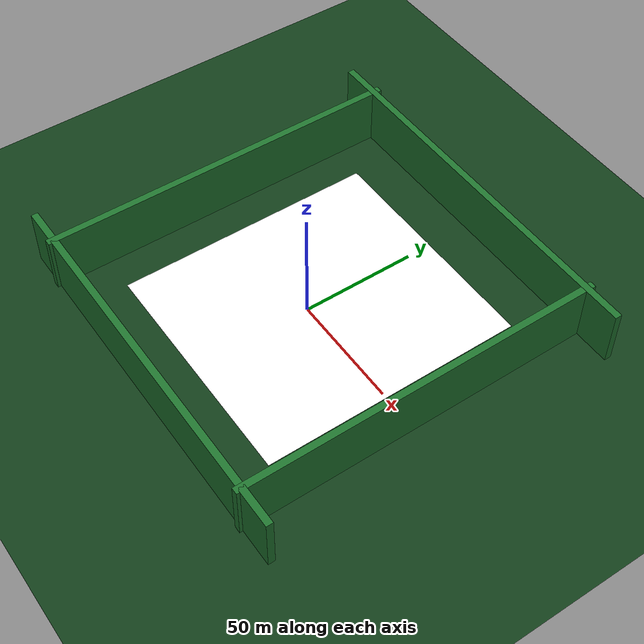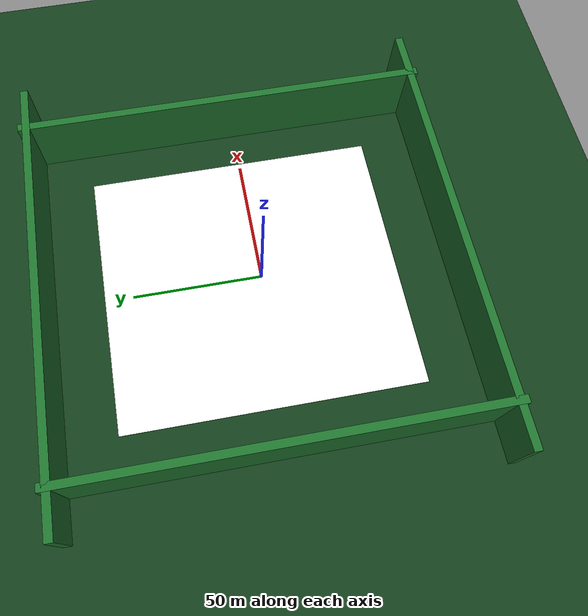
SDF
<?xml version="1.0" ?>
<sdf version="1.10">
  <world name="saha_dunyasi">
    <plugin name="gz::sim::systems::UserCommands" filename="gz-sim-user-commands-system"/>
    <plugin name="gz::sim::systems::Sensors" filename="gz-sim-sensors-system">
      <render_engine>ogre2</render_engine>
    </plugin>
    <plugin name="gz::sim::systems::Physics" filename="gz-sim-physics-system"/>
    <plugin name="gz::sim::systems::SceneBroadcaster" filename="gz-sim-scene-broadcaster-system"/>
    <plugin name="gz::sim::systems::Imu" filename="gz-sim-imu-system"/>
    <plugin name="gz::sim::systems::NavSat" filename="gz-sim-navsat-system"/>

    <!-- GPS datumu: benim_dunyam.sdf / launch DATUM_* / final_odom ile senkron -->
    <spherical_coordinates>
      <surface_model>EARTH_WGS84</surface_model>
      <world_frame_orientation>ENU</world_frame_orientation>
      <latitude_deg>40.7899</latitude_deg>
      <longitude_deg>29.5089</longitude_deg>
      <elevation>30.0</elevation>
      <heading_deg>0</heading_deg>
    </spherical_coordinates>

    <gravity>0 0 -9.8</gravity>
    <magnetic_field>5.5645e-06 2.28758e-05 -4.23884e-05</magnetic_field>
    <atmosphere type="adiabatic"/>
    <physics type="ode">
      <max_step_size>0.004</max_step_size>
      <real_time_factor>1</real_time_factor>
      <real_time_update_rate>250</real_time_update_rate>
    </physics>
    <scene>
      <ambient>0.4 0.4 0.4 1</ambient>
      <background>0.3 0.6 0.9 1</background>
      <shadows>false</shadows>
    </scene>

    <!-- Geniş yeşil taban (saha kutusunun dışı) -->
    <model name="zemin">
      <static>true</static>
      <link name="link">
        <collision name="collision">
          <geometry><plane><normal>0 0 1</normal><size>1000 1000</size></plane></geometry>
        </collision>
        <visual name="visual">
          <geometry><plane><normal>0 0 1</normal><size>1000 1000</size></plane></geometry>
          <material>
            <ambient>0.06 0.2 0.08 1</ambient>
            <diffuse>0.07 0.24 0.1 1</diffuse>
          </material>
        </visual>
      </link>
    </model>

    <!-- Saha zemini: generate_saha_ground.py çıktısıyla senkron pose/size -->
    <model name="saha_kutu">
      <static>true</static>
      <pose>0.354 4.141 0.01 0 0 0</pose>
      <link name="link">
        <collision name="collision">
          <geometry><box><size>103.868 113.687 0.1</size></box></geometry>
        </collision>
        <visual name="visual">
          <geometry><box><size>103.868 113.687 0.1</size></box></geometry>
          <material>
            <ambient>1 1 1 1</ambient>
            <diffuse>1 1 1 1</diffuse>
            <pbr><metal><albedo_map>saha_zemin.png</albedo_map></metal></pbr>
          </material>
        </visual>
      </link>
    </model>

    <!-- Çevre duvarları: dönüşlerde ufuktaki gökyüzünü kapatır (benim_dunyam ile aynı amaç) -->
    <model name="cevre_duvar_kuzey">
      <static>true</static>
      <pose>0.354 81 12.5 0 0 0</pose>
      <link name="link">
        <collision name="collision"><geometry><box><size>170 3 25</size></box></geometry></collision>
        <visual name="visual">
          <geometry><box><size>170 3 25</size></box></geometry>
          <material><ambient>0.1 0.4 0.15 1</ambient><diffuse>0.12 0.45 0.18 1</diffuse></material>
        </visual>
      </link>
    </model>
    <model name="cevre_duvar_guney">
      <static>true</static>
      <pose>0.354 -73 12.5 0 0 0</pose>
      <link name="link">
        <collision name="collision"><geometry><box><size>170 3 25</size></box></geometry></collision>
        <visual name="visual">
          <geometry><box><size>170 3 25</size></box></geometry>
          <material><ambient>0.1 0.4 0.15 1</ambient><diffuse>0.12 0.45 0.18 1</diffuse></material>
        </visual>
      </link>
    </model>
    <model name="cevre_duvar_dogu">
      <static>true</static>
      <pose>68 4.141 12.5 0 0 0</pose>
      <link name="link">
        <collision name="collision"><geometry><box><size>3 160 25</size></box></geometry></collision>
        <visual name="visual">
          <geometry><box><size>3 160 25</size></box></geometry>
          <material><ambient>0.1 0.4 0.15 1</ambient><diffuse>0.12 0.45 0.18 1</diffuse></material>
        </visual>
      </link>
    </model>
    <model name="cevre_duvar_bati">
      <static>true</static>
      <pose>-68 4.141 12.5 0 0 0</pose>
      <link name="link">
        <collision name="collision"><geometry><box><size>3 160 25</size></box></geometry></collision>
        <visual name="visual">
          <geometry><box><size>3 160 25</size></box></geometry>
          <material><ambient>0.1 0.4 0.15 1</ambient><diffuse>0.12 0.45 0.18 1</diffuse></material>
        </visual>
      </link>
    </model>

    <light name="sun" type="directional">
      <pose>0 0 10 0 0 0</pose>
      <cast_shadows>true</cast_shadows>
      <intensity>1</intensity>
      <direction>-0.5 0.1 -0.9</direction>
      <diffuse>0.8 0.8 0.8 1</diffuse>
      <specular>0.2 0.2 0.2 1</specular>
    </light>
  </world>
</sdf>
